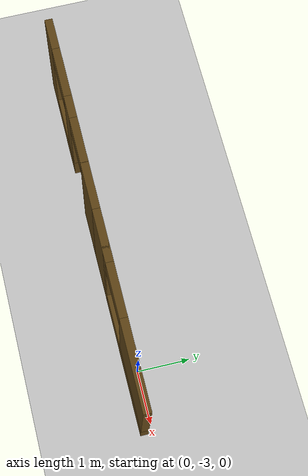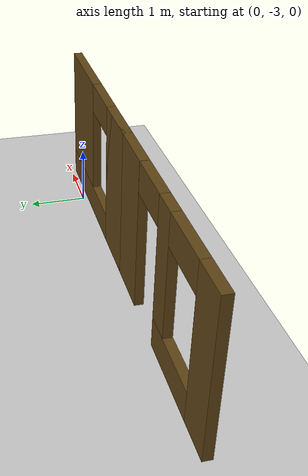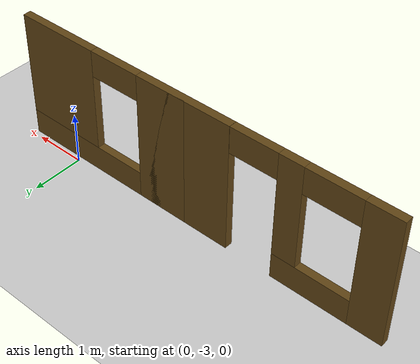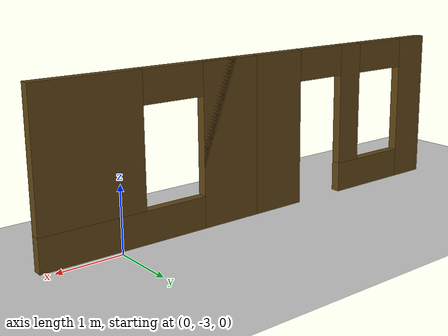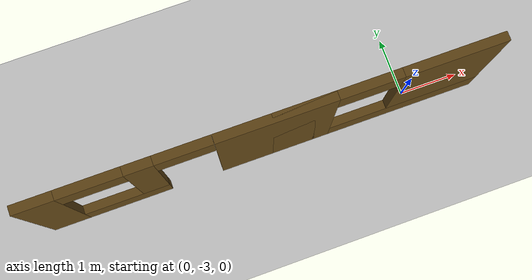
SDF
<sdf version="1.6">
 <world name="default">
  <model name="ground_plane">
   <static>1</static>
   <link name="link">
    <collision name="collision">
     <geometry><plane><normal>0 0 1</normal><size>100 100</size></plane></geometry>
     <surface>
      <contact><collide_bitmask>65535</collide_bitmask></contact>
      <friction><ode><mu>100</mu><mu2>50</mu2></ode></friction>
     </surface>
    </collision>
    <visual name="visual">
     <cast_shadows>0</cast_shadows>
     <geometry><plane><normal>0 0 1</normal><size>100 100</size></plane></geometry>
     <material>
      <script><uri>file://media/materials/scripts/gazebo.material</uri><name>Gazebo/Grey</name></script>
     </material>
    </visual>
   </link>
  </model>
  <model name="BuildMyWorld">
   <pose>-3.99019 0.7838 0 0 -0 0</pose>
   <link name="Wall_54">
    <pose>1.40983 -3.94563 0 0 -0 0</pose>
    <visual name="Wall_54_Visual_0">
     <pose>-3.4333 0 1.25 0 -0 0</pose>
     <geometry><box><size>0.63341 0.15 2.5</size></box></geometry>
     <material>
      <script><uri>file://media/materials/scripts/gazebo.material</uri><name>Gazebo/Grey</name></script>
      <ambient>0.384314 0.27451 0.0862745 1</ambient>
     </material>
     <meta><layer>0</layer></meta>
    </visual>
    <collision name="Wall_54_Collision_0">
     <geometry><box><size>0.63341 0.15 2.5</size></box></geometry>
     <pose>-3.4333 0 1.25 0 -0 0</pose>
    </collision>
    <visual name="Wall_54_Visual_1">
     <pose>0.17724 0 1.25 0 -0 0</pose>
     <geometry><box><size>1.89286 0.15 2.5</size></box></geometry>
     <material>
      <script><uri>file://media/materials/scripts/gazebo.material</uri><name>Gazebo/Grey</name></script>
      <ambient>0.384314 0.27451 0.0862745 1</ambient>
     </material>
     <meta><layer>0</layer></meta>
    </visual>
    <collision name="Wall_54_Collision_1">
     <geometry><box><size>1.89286 0.15 2.5</size></box></geometry>
     <pose>0.17724 0 1.25 0 -0 0</pose>
    </collision>
    <visual name="Wall_54_Visual_2">
     <pose>0.625547 0 1.25 0 -0 0</pose>
     <geometry><box><size>0.99625 0.15 2.5</size></box></geometry>
     <material>
      <script><uri>file://media/materials/scripts/gazebo.material</uri><name>Gazebo/Grey</name></script>
      <ambient>0.384314 0.27451 0.0862745 1</ambient>
     </material>
     <meta><layer>0</layer></meta>
    </visual>
    <collision name="Wall_54_Collision_2">
     <geometry><box><size>0.99625 0.15 2.5</size></box></geometry>
     <pose>0.625547 0 1.25 0 -0 0</pose>
    </collision>
    <visual name="Wall_54_Visual_3">
     <pose>-2.39289 0 0.25 0 -0 0</pose>
     <geometry><box><size>1.4474 0.15 0.5</size></box></geometry>
     <material>
      <script><uri>file://media/materials/scripts/gazebo.material</uri><name>Gazebo/Grey</name></script>
      <ambient>0.384314 0.27451 0.0862745 1</ambient>
     </material>
     <meta><layer>0</layer></meta>
    </visual>
    <collision name="Wall_54_Collision_3">
     <geometry><box><size>1.4474 0.15 0.5</size></box></geometry>
     <pose>-2.39289 0 0.25 0 -0 0</pose>
    </collision>
    <visual name="Wall_54_Visual_4">
     <pose>2.43684 0 0.25 0 -0 0</pose>
     <geometry><box><size>2.62633 0.15 0.5</size></box></geometry>
     <material>
      <script><uri>file://media/materials/scripts/gazebo.material</uri><name>Gazebo/Grey</name></script>
      <ambient>0.384314 0.27451 0.0862745 1</ambient>
     </material>
     <meta><layer>0</layer></meta>
    </visual>
    <collision name="Wall_54_Collision_4">
     <geometry><box><size>2.62633 0.15 0.5</size></box></geometry>
     <pose>2.43684 0 0.25 0 -0 0</pose>
    </collision>
    <visual name="Wall_54_Visual_5">
     <pose>2.43684 0 0.25 0 -0 0</pose>
     <geometry><box><size>2.62633 0.15 0.5</size></box></geometry>
     <material>
      <script><uri>file://media/materials/scripts/gazebo.material</uri><name>Gazebo/Grey</name></script>
      <ambient>0.384314 0.27451 0.0862745 1</ambient>
     </material>
     <meta><layer>0</layer></meta>
    </visual>
    <collision name="Wall_54_Collision_5">
     <geometry><box><size>2.62633 0.15 0.5</size></box></geometry>
     <pose>2.43684 0 0.25 0 -0 0</pose>
    </collision>
    <visual name="Wall_54_Visual_6">
     <pose>-1.89289 0 1.5 0 -0 0</pose>
     <geometry><box><size>0.447398 0.15 2</size></box></geometry>
     <material>
      <script><uri>file://media/materials/scripts/gazebo.material</uri><name>Gazebo/Grey</name></script>
      <ambient>0.384314 0.27451 0.0862745 1</ambient>
     </material>
     <meta><layer>0</layer></meta>
    </visual>
    <collision name="Wall_54_Collision_6">
     <geometry><box><size>0.447398 0.15 2</size></box></geometry>
     <pose>-1.89289 0 1.5 0 -0 0</pose>
    </collision>
    <visual name="Wall_54_Visual_7">
     <pose>-1.89289 0 1.5 0 -0 0</pose>
     <geometry><box><size>0.447398 0.15 2</size></box></geometry>
     <material>
      <script><uri>file://media/materials/scripts/gazebo.material</uri><name>Gazebo/Grey</name></script>
      <ambient>0.384314 0.27451 0.0862745 1</ambient>
     </material>
     <meta><layer>0</layer></meta>
    </visual>
    <collision name="Wall_54_Collision_7">
     <geometry><box><size>0.447398 0.15 2</size></box></geometry>
     <pose>-1.89289 0 1.5 0 -0 0</pose>
    </collision>
    <visual name="Wall_54_Visual_8">
     <pose>2.93684 0 1.5 0 -0 0</pose>
     <geometry><box><size>1.62633 0.15 2</size></box></geometry>
     <material>
      <script><uri>file://media/materials/scripts/gazebo.material</uri><name>Gazebo/Grey</name></script>
      <ambient>0.384314 0.27451 0.0862745 1</ambient>
     </material>
     <meta><layer>0</layer></meta>
    </visual>
    <collision name="Wall_54_Collision_8">
     <geometry><box><size>1.62633 0.15 2</size></box></geometry>
     <pose>2.93684 0 1.5 0 -0 0</pose>
    </collision>
    <visual name="Wall_54_Visual_9">
     <pose>2.93684 0 1.5 0 -0 0</pose>
     <geometry><box><size>1.62633 0.15 2</size></box></geometry>
     <material>
      <script><uri>file://media/materials/scripts/gazebo.material</uri><name>Gazebo/Grey</name></script>
      <ambient>0.384314 0.27451 0.0862745 1</ambient>
     </material>
     <meta><layer>0</layer></meta>
    </visual>
    <collision name="Wall_54_Collision_9">
     <geometry><box><size>1.62633 0.15 2</size></box></geometry>
     <pose>2.93684 0 1.5 0 -0 0</pose>
    </collision>
    <visual name="Wall_54_Visual_10">
     <pose>-2.61659 0 2.25 0 -0 0</pose>
     <geometry><box><size>1 0.15 0.5</size></box></geometry>
     <material>
      <script><uri>file://media/materials/scripts/gazebo.material</uri><name>Gazebo/Grey</name></script>
      <ambient>0.384314 0.27451 0.0862745 1</ambient>
     </material>
     <meta><layer>0</layer></meta>
    </visual>
    <collision name="Wall_54_Collision_10">
     <geometry><box><size>1 0.15 0.5</size></box></geometry>
     <pose>-2.61659 0 2.25 0 -0 0</pose>
    </collision>
    <visual name="Wall_54_Visual_11">
     <pose>1.62367 0 2.25 0 -0 0</pose>
     <geometry><box><size>1 0.15 0.5</size></box></geometry>
     <material>
      <script><uri>file://media/materials/scripts/gazebo.material</uri><name>Gazebo/Grey</name></script>
      <ambient>0.384314 0.27451 0.0862745 1</ambient>
     </material>
     <meta><layer>0</layer></meta>
    </visual>
    <collision name="Wall_54_Collision_11">
     <geometry><box><size>1 0.15 0.5</size></box></geometry>
     <pose>1.62367 0 2.25 0 -0 0</pose>
    </collision>
    <visual name="Wall_54_Visual_12">
     <pose>1.62367 0 2.25 0 -0 0</pose>
     <geometry><box><size>1 0.15 0.5</size></box></geometry>
     <material>
      <script><uri>file://media/materials/scripts/gazebo.material</uri><name>Gazebo/Grey</name></script>
      <ambient>0.384314 0.27451 0.0862745 1</ambient>
     </material>
     <meta><layer>0</layer></meta>
    </visual>
    <collision name="Wall_54_Collision_12">
     <geometry><box><size>1 0.15 0.5</size></box></geometry>
     <pose>1.62367 0 2.25 0 -0 0</pose>
    </collision>
    <visual name="Wall_54_Visual_13">
     <pose>-1.22088 0 2.25 0 -0 0</pose>
     <geometry><box><size>0.896613 0.15 0.5</size></box></geometry>
     <material>
      <script><uri>file://media/materials/scripts/gazebo.material</uri><name>Gazebo/Grey</name></script>
      <ambient>0.384314 0.27451 0.0862745 1</ambient>
     </material>
     <meta><layer>0</layer></meta>
    </visual>
    <collision name="Wall_54_Collision_13">
     <geometry><box><size>0.896613 0.15 0.5</size></box></geometry>
     <pose>-1.22088 0 2.25 0 -0 0</pose>
    </collision>
    <visual name="Wall_54_Visual_14">
     <pose>-1.22088 0 2.25 0 -0 0</pose>
     <geometry><box><size>0.896613 0.15 0.5</size></box></geometry>
     <material>
      <script><uri>file://media/materials/scripts/gazebo.material</uri><name>Gazebo/Grey</name></script>
      <ambient>0.384314 0.27451 0.0862745 1</ambient>
     </material>
     <meta><layer>0</layer></meta>
    </visual>
    <collision name="Wall_54_Collision_14">
     <geometry><box><size>0.896613 0.15 0.5</size></box></geometry>
     <pose>-1.22088 0 2.25 0 -0 0</pose>
    </collision>
   </link>
   <static>1</static>
  </model>
 </world>
</sdf>
